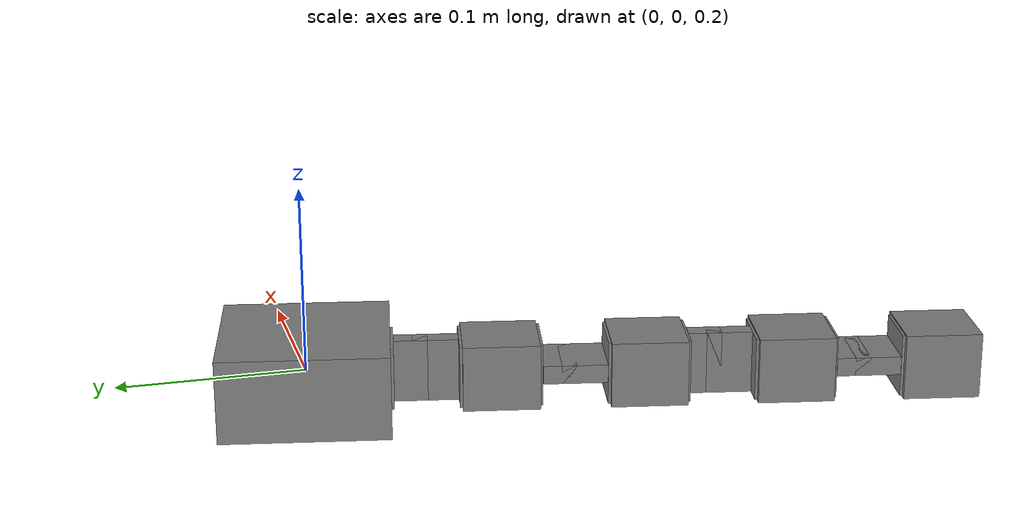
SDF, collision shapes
<?xml version="1.0"?>
<sdf version="1.5"><model name="gen__6"><pose>0.000000e+00 0.000000e+00 2.000000e-01 0.000000e+00 -0.000000e+00 -1.872231e-01</pose>
<link name="link_component_Core__box"><pose>4.063281e-20 -3.940631e-03 1.015820e-20 0.000000e+00 -0.000000e+00 0.000000e+00</pose>
<visual name="component_Core__box_visual"><pose>-4.063281e-20 3.940631e-03 -1.015820e-20 0.000000e+00 -0.000000e+00 0.000000e+00</pose>
<material><ambient>0.50 0.50 0.50 1.00</ambient><diffuse>0.50 0.50 0.50 1.00</diffuse><specular>0.1 0.1 0.1 1.00</specular></material>
<geometry><mesh><uri>model://tol_robot/meshes/CoreComponent.dae</uri></mesh></geometry></visual>
<collision name="component_Core__box_collision"><pose>-4.063281e-20 3.940631e-03 -1.015820e-20 0.000000e+00 -0.000000e+00 0.000000e+00</pose>
<surface><contact><ode><kd>9.000000e+04</kd><kp>2.000000e+06</kp></ode></contact>
<friction><ode><mu>1.000000e+00</mu>
<mu2>1.000000e+00</mu2>
<slip1>1.000000e-02</slip1>
<slip2>1.000000e-02</slip2></ode>
<bullet><friction>1.000000e+00</friction>
<friction2>1.000000e+00</friction2></bullet></friction></surface>
<geometry><box><size>9.000000e-02 9.000000e-02 4.500000e-02</size></box></geometry></collision>
<sensor type="imu" name="Core-imu_sensor"><pose>-4.063281e-20 3.940631e-03 -1.015820e-20 0.000000e+00 -0.000000e+00 0.000000e+00</pose>
<update_rate>1.000000e+01</update_rate>
<always_on>1</always_on></sensor>
<visual name="component_Leg00Joint__root_visual"><pose>1.259006e-19 -4.180937e-02 3.147516e-20 1.570796e+00 -5.551115e-17 -1.570796e+00</pose>
<material><ambient>0.50 0.50 0.50 1.00</ambient><diffuse>0.50 0.50 0.50 1.00</diffuse><specular>0.1 0.1 0.1 1.00</specular></material>
<geometry><box><size>1.500000e-03 3.400000e-02 3.400000e-02</size></box></geometry></visual>
<collision name="component_Leg00Joint__root_collision"><pose>1.259006e-19 -4.180937e-02 3.147516e-20 1.570796e+00 -5.551115e-17 -1.570796e+00</pose>
<surface><contact><ode><kd>9.000000e+04</kd><kp>2.000000e+06</kp></ode></contact>
<friction><ode><mu>1.000000e+00</mu>
<mu2>1.000000e+00</mu2>
<slip1>1.000000e-02</slip1>
<slip2>1.000000e-02</slip2></ode>
<bullet><friction>1.000000e+00</friction>
<friction2>1.000000e+00</friction2></bullet></friction></surface>
<geometry><box><size>1.500000e-03 3.400000e-02 3.400000e-02</size></box></geometry></collision>
<visual name="component_Leg00Joint__frame_frame_visual"><pose>2.313040e-18 -5.165937e-02 5.782600e-19 1.570796e+00 -5.551115e-17 -1.570796e+00</pose>
<material><ambient>0.50 0.50 0.50 1.00</ambient><diffuse>0.50 0.50 0.50 1.00</diffuse><specular>0.1 0.1 0.1 1.00</specular></material>
<geometry><mesh><uri>model://tol_robot/meshes/ActiveHinge_Frame.dae</uri></mesh></geometry></visual>
<collision name="component_Leg00Joint__frame_collision"><pose>2.313040e-18 -5.165937e-02 5.782600e-19 1.570796e+00 -5.551115e-17 -1.570796e+00</pose>
<surface><contact><ode><kd>9.000000e+04</kd><kp>2.000000e+06</kp></ode></contact>
<friction><ode><mu>1.000000e+00</mu>
<mu2>1.000000e+00</mu2>
<slip1>1.000000e-02</slip1>
<slip2>1.000000e-02</slip2></ode>
<bullet><friction>1.000000e+00</friction>
<friction2>1.000000e+00</friction2></bullet></friction></surface>
<geometry><box><size>1.800000e-02 3.400000e-02 1.000000e-02</size></box></geometry></collision>
<inertial><mass>9.820000e-02</mass><inertia><ixx>9.359731e-05</ixx><ixy>-1.784288e-22</ixy><ixz>-2.344696e-22</ixz><iyy>7.741177e-05</iyy><iyz>2.059805e-22</iyz><izz>1.390542e-04</izz></inertia></inertial>
<self_collide>True</self_collide></link>
<link name="link_component_Leg00Joint__servo"><pose>1.638200e-17 -9.529797e-02 7.873596e-20 0.000000e+00 -0.000000e+00 0.000000e+00</pose>
<visual name="component_Leg00Joint__servo_servo_visual"><pose>-1.108624e-17 2.644797e-02 1.245205e-18 1.570796e+00 -5.551115e-17 -1.570796e+00</pose>
<material><ambient>0.50 0.50 0.50 1.00</ambient><diffuse>0.50 0.50 0.50 1.00</diffuse><specular>0.1 0.1 0.1 1.00</specular></material>
<geometry><mesh><uri>model://tol_robot/meshes/ActiveCardanHinge_Servo_Holder.dae</uri></mesh></geometry></visual>
<collision name="component_Leg00Joint__servo_collision"><pose>-1.108624e-17 2.644797e-02 1.245205e-18 1.570796e+00 -5.551115e-17 -1.570796e+00</pose>
<surface><contact><ode><kd>9.000000e+04</kd><kp>2.000000e+06</kp></ode></contact>
<friction><ode><mu>1.000000e+00</mu>
<mu2>1.000000e+00</mu2>
<slip1>1.000000e-02</slip1>
<slip2>1.000000e-02</slip2></ode>
<bullet><friction>1.000000e+00</friction>
<friction2>1.000000e+00</friction2></bullet></friction></surface>
<geometry><box><size>2.450000e-02 3.400000e-02 1.000000e-02</size></box></geometry></collision>
<collision name="component_Leg00Joint__tail_collision"><pose>-8.177453e-18 1.334797e-02 1.972401e-18 1.570796e+00 -5.551115e-17 -1.570796e+00</pose>
<surface><contact><ode><kd>9.000000e+04</kd><kp>2.000000e+06</kp></ode></contact>
<friction><ode><mu>1.000000e+00</mu>
<mu2>1.000000e+00</mu2>
<slip1>1.000000e-02</slip1>
<slip2>1.000000e-02</slip2></ode>
<bullet><friction>1.000000e+00</friction>
<friction2>1.000000e+00</friction2></bullet></friction></surface>
<geometry><box><size>1.500000e-03 3.400000e-02 3.400000e-02</size></box></geometry></collision>
<visual name="component_Leg00__box_visual"><pose>6.530768e-18 -7.902035e-03 -3.481570e-18 2.220446e-16 -2.835742e-16 -3.141593e+00</pose>
<material><ambient>0.50 0.50 0.50 1.00</ambient><diffuse>0.50 0.50 0.50 1.00</diffuse><specular>0.1 0.1 0.1 1.00</specular></material>
<geometry><mesh><uri>model://tol_robot/meshes/FixedBrick.dae</uri></mesh></geometry></visual>
<collision name="component_Leg00__box_collision"><pose>6.530768e-18 -7.902035e-03 -3.481570e-18 2.220446e-16 -2.835742e-16 -3.141593e+00</pose>
<surface><contact><ode><kd>9.000000e+04</kd><kp>2.000000e+06</kp></ode></contact>
<friction><ode><mu>1.000000e+00</mu>
<mu2>1.000000e+00</mu2>
<slip1>1.000000e-02</slip1>
<slip2>1.000000e-02</slip2></ode>
<bullet><friction>1.000000e+00</friction>
<friction2>1.000000e+00</friction2></bullet></friction></surface>
<geometry><box><size>4.100000e-02 4.100000e-02 3.550000e-02</size></box></geometry></collision>
<visual name="component_Leg01Joint__root_visual"><pose>1.102494e-17 -2.915203e-02 1.142195e-18 -4.098187e-16 -9.580016e-17 -1.570796e+00</pose>
<material><ambient>0.50 0.50 0.50 1.00</ambient><diffuse>0.50 0.50 0.50 1.00</diffuse><specular>0.1 0.1 0.1 1.00</specular></material>
<geometry><box><size>1.500000e-03 3.400000e-02 3.400000e-02</size></box></geometry></visual>
<collision name="component_Leg01Joint__root_collision"><pose>1.102494e-17 -2.915203e-02 1.142195e-18 -4.098187e-16 -9.580016e-17 -1.570796e+00</pose>
<surface><contact><ode><kd>9.000000e+04</kd><kp>2.000000e+06</kp></ode></contact>
<friction><ode><mu>1.000000e+00</mu>
<mu2>1.000000e+00</mu2>
<slip1>1.000000e-02</slip1>
<slip2>1.000000e-02</slip2></ode>
<bullet><friction>1.000000e+00</friction>
<friction2>1.000000e+00</friction2></bullet></friction></surface>
<geometry><box><size>1.500000e-03 3.400000e-02 3.400000e-02</size></box></geometry></collision>
<visual name="component_Leg01Joint__frame_frame_visual"><pose>1.102494e-17 -3.900203e-02 2.085827e-18 -4.098187e-16 -9.580016e-17 -1.570796e+00</pose>
<material><ambient>0.50 0.50 0.50 1.00</ambient><diffuse>0.50 0.50 0.50 1.00</diffuse><specular>0.1 0.1 0.1 1.00</specular></material>
<geometry><mesh><uri>model://tol_robot/meshes/ActiveHinge_Frame.dae</uri></mesh></geometry></visual>
<collision name="component_Leg01Joint__frame_collision"><pose>1.102494e-17 -3.900203e-02 2.085827e-18 -4.098187e-16 -9.580016e-17 -1.570796e+00</pose>
<surface><contact><ode><kd>9.000000e+04</kd><kp>2.000000e+06</kp></ode></contact>
<friction><ode><mu>1.000000e+00</mu>
<mu2>1.000000e+00</mu2>
<slip1>1.000000e-02</slip1>
<slip2>1.000000e-02</slip2></ode>
<bullet><friction>1.000000e+00</friction>
<friction2>1.000000e+00</friction2></bullet></friction></surface>
<geometry><box><size>1.800000e-02 3.400000e-02 1.000000e-02</size></box></geometry></collision>
<inertial><mass>3.440000e-02</mass><inertia><ixx>2.116476e-05</ixx><ixy>6.075862e-21</ixy><ixz>-4.523936e-22</ixz><iyy>6.264996e-06</iyy><iyz>-1.407230e-22</iyz><izz>2.083600e-05</izz></inertia></inertial>
<self_collide>True</self_collide></link>
<link name="link_component_Leg01Joint__servo"><pose>2.798452e-17 -1.739980e-01 8.150769e-18 0.000000e+00 -0.000000e+00 0.000000e+00</pose>
<visual name="component_Leg01Joint__servo_servo_visual"><pose>-5.775784e-19 2.644797e-02 -4.716854e-18 -4.098187e-16 -9.580016e-17 -1.570796e+00</pose>
<material><ambient>0.50 0.50 0.50 1.00</ambient><diffuse>0.50 0.50 0.50 1.00</diffuse><specular>0.1 0.1 0.1 1.00</specular></material>
<geometry><mesh><uri>model://tol_robot/meshes/ActiveCardanHinge_Servo_Holder.dae</uri></mesh></geometry></visual>
<collision name="component_Leg01Joint__servo_collision"><pose>-5.775784e-19 2.644797e-02 -4.716854e-18 -4.098187e-16 -9.580016e-17 -1.570796e+00</pose>
<surface><contact><ode><kd>9.000000e+04</kd><kp>2.000000e+06</kp></ode></contact>
<friction><ode><mu>1.000000e+00</mu>
<mu2>1.000000e+00</mu2>
<slip1>1.000000e-02</slip1>
<slip2>1.000000e-02</slip2></ode>
<bullet><friction>1.000000e+00</friction>
<friction2>1.000000e+00</friction2></bullet></friction></surface>
<geometry><box><size>2.450000e-02 3.400000e-02 1.000000e-02</size></box></geometry></collision>
<collision name="component_Leg01Joint__tail_collision"><pose>-5.775784e-19 1.334797e-02 -3.461872e-18 -4.098187e-16 -9.580016e-17 -1.570796e+00</pose>
<surface><contact><ode><kd>9.000000e+04</kd><kp>2.000000e+06</kp></ode></contact>
<friction><ode><mu>1.000000e+00</mu>
<mu2>1.000000e+00</mu2>
<slip1>1.000000e-02</slip1>
<slip2>1.000000e-02</slip2></ode>
<bullet><friction>1.000000e+00</friction>
<friction2>1.000000e+00</friction2></bullet></friction></surface>
<geometry><box><size>1.500000e-03 3.400000e-02 3.400000e-02</size></box></geometry></collision>
<visual name="component_Leg01__box_visual"><pose>1.935976e-20 -7.902035e-03 1.161892e-18 2.220446e-16 -4.098187e-16 -3.141593e+00</pose>
<material><ambient>0.50 0.50 0.50 1.00</ambient><diffuse>0.50 0.50 0.50 1.00</diffuse><specular>0.1 0.1 0.1 1.00</specular></material>
<geometry><mesh><uri>model://tol_robot/meshes/FixedBrick.dae</uri></mesh></geometry></visual>
<collision name="component_Leg01__box_collision"><pose>1.935976e-20 -7.902035e-03 1.161892e-18 2.220446e-16 -4.098187e-16 -3.141593e+00</pose>
<surface><contact><ode><kd>9.000000e+04</kd><kp>2.000000e+06</kp></ode></contact>
<friction><ode><mu>1.000000e+00</mu>
<mu2>1.000000e+00</mu2>
<slip1>1.000000e-02</slip1>
<slip2>1.000000e-02</slip2></ode>
<bullet><friction>1.000000e+00</friction>
<friction2>1.000000e+00</friction2></bullet></friction></surface>
<geometry><box><size>4.100000e-02 4.100000e-02 3.550000e-02</size></box></geometry></collision>
<visual name="component_Leg02Joint__root_visual"><pose>7.828313e-19 -2.915203e-02 6.046873e-18 -1.570796e+00 -4.440892e-16 -1.570796e+00</pose>
<material><ambient>0.50 0.50 0.50 1.00</ambient><diffuse>0.50 0.50 0.50 1.00</diffuse><specular>0.1 0.1 0.1 1.00</specular></material>
<geometry><box><size>1.500000e-03 3.400000e-02 3.400000e-02</size></box></geometry></visual>
<collision name="component_Leg02Joint__root_collision"><pose>7.828313e-19 -2.915203e-02 6.046873e-18 -1.570796e+00 -4.440892e-16 -1.570796e+00</pose>
<surface><contact><ode><kd>9.000000e+04</kd><kp>2.000000e+06</kp></ode></contact>
<friction><ode><mu>1.000000e+00</mu>
<mu2>1.000000e+00</mu2>
<slip1>1.000000e-02</slip1>
<slip2>1.000000e-02</slip2></ode>
<bullet><friction>1.000000e+00</friction>
<friction2>1.000000e+00</friction2></bullet></friction></surface>
<geometry><box><size>1.500000e-03 3.400000e-02 3.400000e-02</size></box></geometry></collision>
<visual name="component_Leg02Joint__frame_frame_visual"><pose>2.969971e-18 -3.900203e-02 1.042115e-17 -1.570796e+00 -4.440892e-16 -1.570796e+00</pose>
<material><ambient>0.50 0.50 0.50 1.00</ambient><diffuse>0.50 0.50 0.50 1.00</diffuse><specular>0.1 0.1 0.1 1.00</specular></material>
<geometry><mesh><uri>model://tol_robot/meshes/ActiveHinge_Frame.dae</uri></mesh></geometry></visual>
<collision name="component_Leg02Joint__frame_collision"><pose>2.969971e-18 -3.900203e-02 1.042115e-17 -1.570796e+00 -4.440892e-16 -1.570796e+00</pose>
<surface><contact><ode><kd>9.000000e+04</kd><kp>2.000000e+06</kp></ode></contact>
<friction><ode><mu>1.000000e+00</mu>
<mu2>1.000000e+00</mu2>
<slip1>1.000000e-02</slip1>
<slip2>1.000000e-02</slip2></ode>
<bullet><friction>1.000000e+00</friction>
<friction2>1.000000e+00</friction2></bullet></friction></surface>
<geometry><box><size>1.800000e-02 3.400000e-02 1.000000e-02</size></box></geometry></collision>
<inertial><mass>3.440000e-02</mass><inertia><ixx>2.047836e-05</ixx><ixy>4.917586e-22</ixy><ixz>4.875545e-22</ixz><iyy>6.264996e-06</iyy><iyz>2.976608e-21</iyz><izz>2.152240e-05</izz></inertia></inertial>
<self_collide>True</self_collide></link>
<link name="link_component_Leg02Joint__servo"><pose>4.498281e-17 -2.526980e-01 5.004713e-17 0.000000e+00 -0.000000e+00 0.000000e+00</pose>
<visual name="component_Leg02Joint__servo_servo_visual"><pose>-1.108624e-17 2.644797e-02 -2.559102e-17 -1.570796e+00 -4.440892e-16 -1.570796e+00</pose>
<material><ambient>0.50 0.50 0.50 1.00</ambient><diffuse>0.50 0.50 0.50 1.00</diffuse><specular>0.1 0.1 0.1 1.00</specular></material>
<geometry><mesh><uri>model://tol_robot/meshes/ActiveCardanHinge_Servo_Holder.dae</uri></mesh></geometry></visual>
<collision name="component_Leg02Joint__servo_collision"><pose>-1.108624e-17 2.644797e-02 -2.559102e-17 -1.570796e+00 -4.440892e-16 -1.570796e+00</pose>
<surface><contact><ode><kd>9.000000e+04</kd><kp>2.000000e+06</kp></ode></contact>
<friction><ode><mu>1.000000e+00</mu>
<mu2>1.000000e+00</mu2>
<slip1>1.000000e-02</slip1>
<slip2>1.000000e-02</slip2></ode>
<bullet><friction>1.000000e+00</friction>
<friction2>1.000000e+00</friction2></bullet></friction></surface>
<geometry><box><size>2.450000e-02 3.400000e-02 1.000000e-02</size></box></geometry></collision>
<collision name="component_Leg02Joint__tail_collision"><pose>-8.177453e-18 1.334797e-02 -1.977346e-17 -1.570796e+00 -4.440892e-16 -1.570796e+00</pose>
<surface><contact><ode><kd>9.000000e+04</kd><kp>2.000000e+06</kp></ode></contact>
<friction><ode><mu>1.000000e+00</mu>
<mu2>1.000000e+00</mu2>
<slip1>1.000000e-02</slip1>
<slip2>1.000000e-02</slip2></ode>
<bullet><friction>1.000000e+00</friction>
<friction2>1.000000e+00</friction2></bullet></friction></surface>
<geometry><box><size>1.500000e-03 3.400000e-02 3.400000e-02</size></box></geometry></collision>
<visual name="component_Leg02__box_visual"><pose>6.530768e-18 -7.902035e-03 1.082429e-17 8.881784e-16 -1.110223e-16 -3.141593e+00</pose>
<material><ambient>0.50 0.50 0.50 1.00</ambient><diffuse>0.50 0.50 0.50 1.00</diffuse><specular>0.1 0.1 0.1 1.00</specular></material>
<geometry><mesh><uri>model://tol_robot/meshes/FixedBrick.dae</uri></mesh></geometry></visual>
<collision name="component_Leg02__box_collision"><pose>6.530768e-18 -7.902035e-03 1.082429e-17 8.881784e-16 -1.110223e-16 -3.141593e+00</pose>
<surface><contact><ode><kd>9.000000e+04</kd><kp>2.000000e+06</kp></ode></contact>
<friction><ode><mu>1.000000e+00</mu>
<mu2>1.000000e+00</mu2>
<slip1>1.000000e-02</slip1>
<slip2>1.000000e-02</slip2></ode>
<bullet><friction>1.000000e+00</friction>
<friction2>1.000000e+00</friction2></bullet></friction></surface>
<geometry><box><size>4.100000e-02 4.100000e-02 3.550000e-02</size></box></geometry></collision>
<visual name="component_Leg03Joint__root_visual"><pose>1.102494e-17 -2.915203e-02 2.987768e-17 1.284366e-16 -1.127637e-15 -1.570796e+00</pose>
<material><ambient>0.50 0.50 0.50 1.00</ambient><diffuse>0.50 0.50 0.50 1.00</diffuse><specular>0.1 0.1 0.1 1.00</specular></material>
<geometry><box><size>1.500000e-03 3.400000e-02 3.400000e-02</size></box></geometry></visual>
<collision name="component_Leg03Joint__root_collision"><pose>1.102494e-17 -2.915203e-02 2.987768e-17 1.284366e-16 -1.127637e-15 -1.570796e+00</pose>
<surface><contact><ode><kd>9.000000e+04</kd><kp>2.000000e+06</kp></ode></contact>
<friction><ode><mu>1.000000e+00</mu>
<mu2>1.000000e+00</mu2>
<slip1>1.000000e-02</slip1>
<slip2>1.000000e-02</slip2></ode>
<bullet><friction>1.000000e+00</friction>
<friction2>1.000000e+00</friction2></bullet></friction></surface>
<geometry><box><size>1.500000e-03 3.400000e-02 3.400000e-02</size></box></geometry></collision>
<visual name="component_Leg03Joint__frame_frame_visual"><pose>1.102494e-17 -3.900203e-02 4.098490e-17 1.284366e-16 -1.127637e-15 -1.570796e+00</pose>
<material><ambient>0.50 0.50 0.50 1.00</ambient><diffuse>0.50 0.50 0.50 1.00</diffuse><specular>0.1 0.1 0.1 1.00</specular></material>
<geometry><mesh><uri>model://tol_robot/meshes/ActiveHinge_Frame.dae</uri></mesh></geometry></visual>
<collision name="component_Leg03Joint__frame_collision"><pose>1.102494e-17 -3.900203e-02 4.098490e-17 1.284366e-16 -1.127637e-15 -1.570796e+00</pose>
<surface><contact><ode><kd>9.000000e+04</kd><kp>2.000000e+06</kp></ode></contact>
<friction><ode><mu>1.000000e+00</mu>
<mu2>1.000000e+00</mu2>
<slip1>1.000000e-02</slip1>
<slip2>1.000000e-02</slip2></ode>
<bullet><friction>1.000000e+00</friction>
<friction2>1.000000e+00</friction2></bullet></friction></surface>
<geometry><box><size>1.800000e-02 3.400000e-02 1.000000e-02</size></box></geometry></collision>
<inertial><mass>3.440000e-02</mass><inertia><ixx>2.116476e-05</ixx><ixy>6.695116e-21</ixy><ixz>-8.305685e-23</ixz><iyy>6.264996e-06</iyy><iyz>1.592663e-20</iyz><izz>2.083600e-05</izz></inertia></inertial>
<self_collide>True</self_collide></link>
<link name="link_component_Leg03Joint__servo"><pose>5.615732e-17 -3.218229e-01 1.213165e-16 0.000000e+00 -0.000000e+00 0.000000e+00</pose>
<visual name="component_Leg03Joint__servo_servo_visual"><pose>-1.495709e-19 1.687290e-02 -1.534329e-17 1.284366e-16 -1.127637e-15 -1.570796e+00</pose>
<material><ambient>0.50 0.50 0.50 1.00</ambient><diffuse>0.50 0.50 0.50 1.00</diffuse><specular>0.1 0.1 0.1 1.00</specular></material>
<geometry><mesh><uri>model://tol_robot/meshes/ActiveCardanHinge_Servo_Holder.dae</uri></mesh></geometry></visual>
<collision name="component_Leg03Joint__servo_collision"><pose>-1.495709e-19 1.687290e-02 -1.534329e-17 1.284366e-16 -1.127637e-15 -1.570796e+00</pose>
<surface><contact><ode><kd>9.000000e+04</kd><kp>2.000000e+06</kp></ode></contact>
<friction><ode><mu>1.000000e+00</mu>
<mu2>1.000000e+00</mu2>
<slip1>1.000000e-02</slip1>
<slip2>1.000000e-02</slip2></ode>
<bullet><friction>1.000000e+00</friction>
<friction2>1.000000e+00</friction2></bullet></friction></surface>
<geometry><box><size>2.450000e-02 3.400000e-02 1.000000e-02</size></box></geometry></collision>
<collision name="component_Leg03Joint__tail_collision"><pose>-1.495709e-19 3.772901e-03 -5.712429e-19 1.284366e-16 -1.127637e-15 -1.570796e+00</pose>
<surface><contact><ode><kd>9.000000e+04</kd><kp>2.000000e+06</kp></ode></contact>
<friction><ode><mu>1.000000e+00</mu>
<mu2>1.000000e+00</mu2>
<slip1>1.000000e-02</slip1>
<slip2>1.000000e-02</slip2></ode>
<bullet><friction>1.000000e+00</friction>
<friction2>1.000000e+00</friction2></bullet></friction></surface>
<geometry><box><size>1.500000e-03 3.400000e-02 3.400000e-02</size></box></geometry></collision>
<visual name="component_Leg03__box_visual"><pose>2.346210e-19 -1.747710e-02 1.393023e-17 6.661338e-16 1.284366e-16 -3.141593e+00</pose>
<material><ambient>0.50 0.50 0.50 1.00</ambient><diffuse>0.50 0.50 0.50 1.00</diffuse><specular>0.1 0.1 0.1 1.00</specular></material>
<geometry><mesh><uri>model://tol_robot/meshes/FixedBrick.dae</uri></mesh></geometry></visual>
<collision name="component_Leg03__box_collision"><pose>2.346210e-19 -1.747710e-02 1.393023e-17 6.661338e-16 1.284366e-16 -3.141593e+00</pose>
<surface><contact><ode><kd>9.000000e+04</kd><kp>2.000000e+06</kp></ode></contact>
<friction><ode><mu>1.000000e+00</mu>
<mu2>1.000000e+00</mu2>
<slip1>1.000000e-02</slip1>
<slip2>1.000000e-02</slip2></ode>
<bullet><friction>1.000000e+00</friction>
<friction2>1.000000e+00</friction2></bullet></friction></surface>
<geometry><box><size>4.100000e-02 4.100000e-02 3.550000e-02</size></box></geometry></collision>
<inertial><mass>2.620000e-02</mass><inertia><ixx>9.478372e-06</ixx><ixy>6.848852e-23</ixy><ixz>-1.476556e-22</ixz><iyy>4.790729e-06</iyy><iyz>4.730738e-21</iyz><izz>1.062801e-05</izz></inertia></inertial>
<self_collide>True</self_collide></link>
<joint type="revolute" name="joint_link_component_Leg03Joint__servo_link_component_Leg02Joint__servo"><pose>1.102494e-17 -4.400203e-02 4.662309e-17 1.284366e-16 -1.127637e-15 -1.570796e+00</pose>
<parent>link_component_Leg03Joint__servo</parent>
<child>link_component_Leg02Joint__servo</child>
<axis><xyz>0.000000e+00 1.000000e+00 0.000000e+00</xyz>
<use_parent_model_frame>0</use_parent_model_frame>
<limit><lower>-7.853982e-01</lower>
<upper>7.853982e-01</upper>
<effort>1.765800e-01</effort>
<velocity>5.235988e+00</velocity></limit></axis></joint>
<joint type="revolute" name="joint_link_component_Leg02Joint__servo_link_component_Leg01Joint__servo"><pose>4.080194e-18 -4.400203e-02 1.264160e-17 -1.570796e+00 -4.440892e-16 -1.570796e+00</pose>
<parent>link_component_Leg02Joint__servo</parent>
<child>link_component_Leg01Joint__servo</child>
<axis><xyz>0.000000e+00 1.000000e+00 0.000000e+00</xyz>
<use_parent_model_frame>0</use_parent_model_frame>
<limit><lower>-7.853982e-01</lower>
<upper>7.853982e-01</upper>
<effort>1.765800e-01</effort>
<velocity>5.235988e+00</velocity></limit></axis></joint>
<joint type="revolute" name="joint_link_component_Leg01Joint__servo_link_component_Leg00Joint__servo"><pose>1.102494e-17 -4.400203e-02 2.564827e-18 -4.098187e-16 -9.580016e-17 -1.570796e+00</pose>
<parent>link_component_Leg01Joint__servo</parent>
<child>link_component_Leg00Joint__servo</child>
<axis><xyz>0.000000e+00 1.000000e+00 0.000000e+00</xyz>
<use_parent_model_frame>0</use_parent_model_frame>
<limit><lower>-7.853982e-01</lower>
<upper>7.853982e-01</upper>
<effort>1.765800e-01</effort>
<velocity>5.235988e+00</velocity></limit></axis></joint>
<joint type="revolute" name="joint_link_component_Leg00Joint__servo_link_component_Core__box"><pose>3.423263e-18 -5.665937e-02 8.558158e-19 1.570796e+00 -5.551115e-17 -1.570796e+00</pose>
<parent>link_component_Leg00Joint__servo</parent>
<child>link_component_Core__box</child>
<axis><xyz>0.000000e+00 1.000000e+00 0.000000e+00</xyz>
<use_parent_model_frame>0</use_parent_model_frame>
<limit><lower>-7.853982e-01</lower>
<upper>7.853982e-01</upper>
<effort>1.765800e-01</effort>
<velocity>5.235988e+00</velocity></limit></axis></joint>
<plugin name="robot_controller" filename="libtolrobotcontrol.so"><rv:robot_config xmlns:rv="https://github.com/ElteHupkes/revolve"><rv:update_rate>1.000000e+01</rv:update_rate>
<rv:brain><rv:neuron layer="input" type="Input" id="Core-in-0" part_id="Core" />
<rv:neuron layer="input" type="Input" id="Core-in-1" part_id="Core" />
<rv:neuron layer="input" type="Input" id="Core-in-2" part_id="Core" />
<rv:neuron layer="input" type="Input" id="Core-in-3" part_id="Core" />
<rv:neuron layer="input" type="Input" id="Core-in-4" part_id="Core" />
<rv:neuron layer="input" type="Input" id="Core-in-5" part_id="Core" />
<rv:neuron layer="output" type="Simple" id="Leg00Joint-out-0" part_id="Leg00Joint"><rv:bias>0.000000e+00</rv:bias>
<rv:gain>0.000000e+00</rv:gain></rv:neuron>
<rv:neuron layer="hidden" type="Simple" id="Leg00Joint-hidden-0" part_id="Leg00Joint"><rv:bias>-1.000000e+00</rv:bias>
<rv:gain>5.000000e-01</rv:gain></rv:neuron>
<rv:neuron layer="hidden" type="Simple" id="Leg00Joint-hidden-1" part_id="Leg00Joint"><rv:bias>-1.000000e+00</rv:bias>
<rv:gain>5.000000e-01</rv:gain></rv:neuron>
<rv:neuron layer="output" type="Simple" id="Leg01Joint-out-0" part_id="Leg01Joint"><rv:bias>0.000000e+00</rv:bias>
<rv:gain>1.000000e+00</rv:gain></rv:neuron>
<rv:neuron layer="hidden" type="Simple" id="Leg01Joint-hidden-0" part_id="Leg01Joint"><rv:bias>0.000000e+00</rv:bias>
<rv:gain>1.000000e+00</rv:gain></rv:neuron>
<rv:neuron layer="hidden" type="Simple" id="Leg01Joint-hidden-1" part_id="Leg01Joint"><rv:bias>1.000000e+00</rv:bias>
<rv:gain>5.000000e-01</rv:gain></rv:neuron>
<rv:neuron layer="output" type="Simple" id="Leg02Joint-out-0" part_id="Leg02Joint"><rv:bias>1.728954e-01</rv:bias>
<rv:gain>5.000000e-01</rv:gain></rv:neuron>
<rv:neuron layer="hidden" type="Simple" id="Leg02Joint-hidden-0" part_id="Leg02Joint"><rv:bias>-1.000000e+00</rv:bias>
<rv:gain>5.000000e-01</rv:gain></rv:neuron>
<rv:neuron layer="hidden" type="Simple" id="Leg02Joint-hidden-1" part_id="Leg02Joint"><rv:bias>1.000000e+00</rv:bias>
<rv:gain>5.000000e-01</rv:gain></rv:neuron>
<rv:neuron layer="hidden" type="Simple" id="Leg03Joint-hidden-0" part_id="Leg03Joint"><rv:bias>0.000000e+00</rv:bias>
<rv:gain>6.900763e-01</rv:gain></rv:neuron>
<rv:neuron layer="hidden" type="Simple" id="Leg03Joint-hidden-1" part_id="Leg03Joint"><rv:bias>-3.960977e-01</rv:bias>
<rv:gain>5.000000e-01</rv:gain></rv:neuron>
<rv:neuron layer="output" type="Simple" id="Leg03Joint-out-0" part_id="Leg03Joint"><rv:bias>0.000000e+00</rv:bias>
<rv:gain>1.000000e+00</rv:gain></rv:neuron>
<rv:neural_connection src="Core-in-3" dst="Leg00Joint-hidden-1" weight="5.053437e-01" />
<rv:neural_connection src="Core-in-2" dst="Leg00Joint-hidden-1" weight="4.563751e-01" />
<rv:neural_connection src="Core-in-5" dst="Leg00Joint-hidden-1" weight="-4.578764e+00" />
<rv:neural_connection src="Core-in-4" dst="Leg00Joint-hidden-1" weight="-1.041580e+00" />
<rv:neural_connection src="Core-in-1" dst="Leg00Joint-hidden-1" weight="6.536708e+00" />
<rv:neural_connection src="Core-in-0" dst="Leg00Joint-hidden-1" weight="-1.843473e+00" />
<rv:neural_connection src="Leg00Joint-hidden-1" dst="Leg00Joint-hidden-0" weight="-7.371820e+00" />
<rv:neural_connection src="Leg00Joint-hidden-0" dst="Leg00Joint-hidden-1" weight="-8.523181e+00" />
<rv:neural_connection src="Leg00Joint-hidden-1" dst="Leg00Joint-hidden-1" weight="1.000000e+00" />
<rv:neural_connection src="Leg00Joint-hidden-0" dst="Leg00Joint-hidden-0" weight="-1.380752e+00" />
<rv:neural_connection src="Leg00Joint-hidden-1" dst="Leg00Joint-out-0" weight="-1.692309e+00" />
<rv:neural_connection src="Leg00Joint-out-0" dst="Leg00Joint-hidden-0" weight="1.002560e+00" />
<rv:neural_connection src="Leg00Joint-hidden-1" dst="Leg01Joint-hidden-0" weight="7.081829e+00" />
<rv:neural_connection src="Leg01Joint-hidden-0" dst="Leg01Joint-hidden-1" weight="4.698510e+00" />
<rv:neural_connection src="Leg01Joint-hidden-1" dst="Leg01Joint-hidden-0" weight="1.000000e+00" />
<rv:neural_connection src="Leg01Joint-hidden-0" dst="Leg01Joint-hidden-0" weight="1.000000e+00" />
<rv:neural_connection src="Leg01Joint-hidden-1" dst="Leg01Joint-hidden-1" weight="2.511231e+00" />
<rv:neural_connection src="Leg01Joint-hidden-0" dst="Leg01Joint-out-0" weight="1.006363e+00" />
<rv:neural_connection src="Leg01Joint-out-0" dst="Leg01Joint-hidden-1" weight="5.168221e-01" />
<rv:neural_connection src="Leg01Joint-hidden-0" dst="Leg02Joint-hidden-1" weight="1.000000e+00" />
<rv:neural_connection src="Leg01Joint-hidden-0" dst="Leg00Joint-hidden-1" weight="1.263108e+00" />
<rv:neural_connection src="Leg02Joint-hidden-1" dst="Leg02Joint-hidden-0" weight="-6.049811e+00" />
<rv:neural_connection src="Leg02Joint-hidden-0" dst="Leg02Joint-hidden-1" weight="-3.916482e+00" />
<rv:neural_connection src="Leg02Joint-hidden-1" dst="Leg02Joint-hidden-1" weight="5.691739e-02" />
<rv:neural_connection src="Leg02Joint-hidden-0" dst="Leg02Joint-hidden-0" weight="4.739924e+00" />
<rv:neural_connection src="Leg02Joint-hidden-1" dst="Leg02Joint-out-0" weight="-1.430093e+00" />
<rv:neural_connection src="Leg02Joint-out-0" dst="Leg02Joint-hidden-0" weight="5.863530e+00" />
<rv:neural_connection src="Leg02Joint-hidden-1" dst="Leg03Joint-hidden-0" weight="1.595361e+00" />
<rv:neural_connection src="Leg02Joint-hidden-1" dst="Leg01Joint-hidden-0" weight="-3.523152e+00" />
<rv:neural_connection src="Leg03Joint-hidden-0" dst="Leg03Joint-hidden-1" weight="2.732869e+00" />
<rv:neural_connection src="Leg03Joint-hidden-1" dst="Leg03Joint-hidden-0" weight="8.576115e+00" />
<rv:neural_connection src="Leg03Joint-hidden-0" dst="Leg03Joint-hidden-0" weight="7.203121e+00" />
<rv:neural_connection src="Leg03Joint-hidden-1" dst="Leg03Joint-hidden-1" weight="1.000000e+00" />
<rv:neural_connection src="Leg03Joint-hidden-0" dst="Leg03Joint-out-0" weight="3.597938e+00" />
<rv:neural_connection src="Leg03Joint-out-0" dst="Leg03Joint-hidden-1" weight="4.362182e+00" />
<rv:neural_connection src="Leg03Joint-hidden-0" dst="Leg02Joint-hidden-1" weight="5.111156e-01" /></rv:brain>
<rv:sensor link="link_component_Core__box" sensor="Core-imu_sensor" id="Core__Core-imu_sensor" part_id="Core" type="imu" />
<rv:motor joint="joint_link_component_Leg00Joint__servo_link_component_Core__box" type="position" id="Leg00Joint__rotate" part_id="Leg00Joint"><rv:pid><rv:p>9.000000e-01</rv:p>
<rv:i>0.000000e+00</rv:i>
<rv:d>0.000000e+00</rv:d>
<rv:i_max>0.000000e+00</rv:i_max>
<rv:i_min>0.000000e+00</rv:i_min></rv:pid></rv:motor>
<rv:motor joint="joint_link_component_Leg01Joint__servo_link_component_Leg00Joint__servo" type="position" id="Leg01Joint__rotate" part_id="Leg01Joint"><rv:pid><rv:p>9.000000e-01</rv:p>
<rv:i>0.000000e+00</rv:i>
<rv:d>0.000000e+00</rv:d>
<rv:i_max>0.000000e+00</rv:i_max>
<rv:i_min>0.000000e+00</rv:i_min></rv:pid></rv:motor>
<rv:motor joint="joint_link_component_Leg02Joint__servo_link_component_Leg01Joint__servo" type="position" id="Leg02Joint__rotate" part_id="Leg02Joint"><rv:pid><rv:p>9.000000e-01</rv:p>
<rv:i>0.000000e+00</rv:i>
<rv:d>0.000000e+00</rv:d>
<rv:i_max>0.000000e+00</rv:i_max>
<rv:i_min>0.000000e+00</rv:i_min></rv:pid></rv:motor>
<rv:motor joint="joint_link_component_Leg03Joint__servo_link_component_Leg02Joint__servo" type="position" id="Leg03Joint__rotate" part_id="Leg03Joint"><rv:pid><rv:p>9.000000e-01</rv:p>
<rv:i>0.000000e+00</rv:i>
<rv:d>0.000000e+00</rv:d>
<rv:i_max>0.000000e+00</rv:i_max>
<rv:i_min>0.000000e+00</rv:i_min></rv:pid></rv:motor></rv:robot_config></plugin>
<static>0</static></model></sdf>
